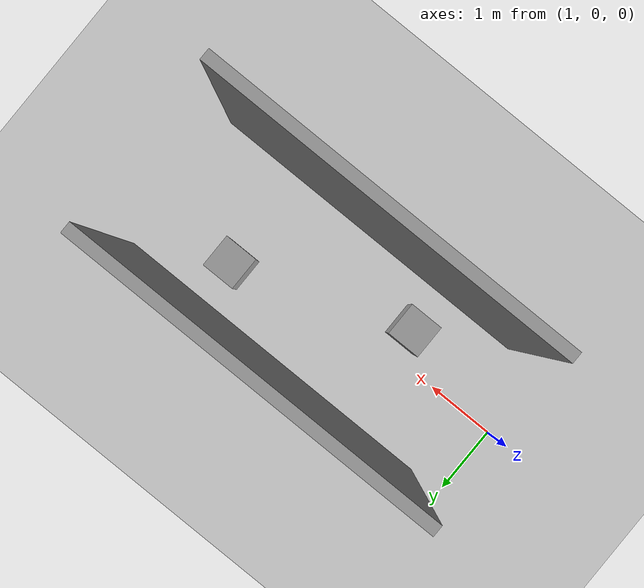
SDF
<sdf version="1.7">
 <world name="default">
  <light name="sun" type="directional">
   <pose>0 0 10 0 -0 0</pose>
   <diffuse>0.8 0.8 0.8 1</diffuse>
   <specular>0.2 0.2 0.2 1</specular>
   <attenuation>
    <range>1000</range>
    <constant>0.9</constant>
    <linear>0.01</linear>
    <quadratic>0.001</quadratic>
   </attenuation>
   <direction>-0.5 0.1 -0.9</direction>
   <spot><inner_angle>0</inner_angle><outer_angle>0</outer_angle><falloff>0</falloff></spot>
  </light>
  <model name="ground_plane">
   <static>1</static>
   <link name="link">
    <collision name="collision">
     <geometry><plane><normal>0 0 1</normal><size>100 100</size></plane></geometry>
     <surface><friction><ode><mu>100</mu><mu2>50</mu2></ode></friction></surface>
    </collision>
    <visual name="visual">
     <cast_shadows>0</cast_shadows>
     <geometry><plane><normal>0 0 1</normal><size>100 100</size></plane></geometry>
     <material>
      <script><uri>file://media/materials/scripts/gazebo.material</uri><name>Gazebo/Grey</name></script>
     </material>
    </visual>
   </link>
  </model>
  <gravity>0 0 -9.8</gravity>
  <magnetic_field>6e-06 2.3e-05 -4.2e-05</magnetic_field>
  <atmosphere type="adiabatic"/>
  <physics type="ode">
   <max_step_size>0.001</max_step_size>
   <real_time_factor>1</real_time_factor>
   <real_time_update_rate>1000</real_time_update_rate>
  </physics>
  <scene><ambient>0.4 0.4 0.4 1</ambient><background>0.7 0.7 0.7 1</background><shadows>1</shadows></scene>
  <audio><device>default</device></audio>
  <spherical_coordinates>
   <surface_model>EARTH_WGS84</surface_model>
   <latitude_deg>0</latitude_deg>
   <longitude_deg>0</longitude_deg>
   <elevation>0</elevation>
   <heading_deg>0</heading_deg>
  </spherical_coordinates>
  <model name="box_0.5">
   <link name="link_0">
    <inertial>
     <mass>1</mass>
     <inertia>
      <ixx>0.166667</ixx>
      <ixy>0</ixy>
      <ixz>0</ixz>
      <iyy>0.166667</iyy>
      <iyz>0</iyz>
      <izz>0.166667</izz>
     </inertia>
    </inertial>
    <visual name="visual">
     <geometry><box><size>0.5 0.5 0.5</size></box></geometry>
     <material>
      <lighting>1</lighting>
      <script><uri>file://media/materials/scripts/gazebo.material</uri><name>Gazebo/Grey</name></script>
      <shader type="pixel"><normal_map>__default__</normal_map></shader>
      <ambient>0.3 0.3 0.3 1</ambient>
      <diffuse>0.7 0.7 0.7 1</diffuse>
      <specular>0.01 0.01 0.01 1</specular>
      <emissive>0 0 0 1</emissive>
     </material>
    </visual>
    <collision name="collision">
     <geometry><box><size>0.5 0.5 0.5</size></box></geometry>
     <surface>
      <friction>
       <ode><mu>1</mu><mu2>1</mu2><fdir1>0 0 0</fdir1><slip1>0</slip1><slip2>0</slip2></ode>
       <torsional>
        <coefficient>1</coefficient>
        <patch_radius>0</patch_radius>
        <surface_radius>0</surface_radius>
        <use_patch_radius>1</use_patch_radius>
        <ode><slip>0</slip></ode>
       </torsional>
      </friction>
      <bounce><restitution_coefficient>0</restitution_coefficient><threshold>1e+06</threshold></bounce>
      <contact>
       <collide_without_contact>0</collide_without_contact>
       <collide_without_contact_bitmask>1</collide_without_contact_bitmask>
       <collide_bitmask>1</collide_bitmask>
       <ode>
        <soft_cfm>0</soft_cfm>
        <soft_erp>0.2</soft_erp>
        <kp>1e+13</kp>
        <kd>1</kd>
        <max_vel>0.01</max_vel>
        <min_depth>0</min_depth>
       </ode>
       <bullet>
        <split_impulse>1</split_impulse>
        <split_impulse_penetration_threshold>-0.01</split_impulse_penetration_threshold>
        <soft_cfm>0</soft_cfm>
        <soft_erp>0.2</soft_erp>
        <kp>1e+13</kp>
        <kd>1</kd>
       </bullet>
      </contact>
     </surface>
    </collision>
   </link>
   <static>0</static>
   <pose>2.7444 -0.43279 0.25 0 -0 0</pose>
  </model>
  <model name="box_0.5_clone">
   <link name="link_0">
    <inertial>
     <mass>1</mass>
     <inertia>
      <ixx>0.166667</ixx>
      <ixy>0</ixy>
      <ixz>0</ixz>
      <iyy>0.166667</iyy>
      <iyz>0</iyz>
      <izz>0.166667</izz>
     </inertia>
    </inertial>
    <visual name="visual">
     <geometry><box><size>0.5 0.5 0.5</size></box></geometry>
     <material>
      <lighting>1</lighting>
      <script><uri>file://media/materials/scripts/gazebo.material</uri><name>Gazebo/Grey</name></script>
      <shader type="pixel"><normal_map>__default__</normal_map></shader>
      <ambient>0.3 0.3 0.3 1</ambient>
      <diffuse>0.7 0.7 0.7 1</diffuse>
      <specular>0.01 0.01 0.01 1</specular>
      <emissive>0 0 0 1</emissive>
     </material>
    </visual>
    <collision name="collision">
     <geometry><box><size>0.5 0.5 0.5</size></box></geometry>
     <surface>
      <friction>
       <ode><mu>1</mu><mu2>1</mu2><fdir1>0 0 0</fdir1><slip1>0</slip1><slip2>0</slip2></ode>
       <torsional>
        <coefficient>1</coefficient>
        <patch_radius>0</patch_radius>
        <surface_radius>0</surface_radius>
        <use_patch_radius>1</use_patch_radius>
        <ode><slip>0</slip></ode>
       </torsional>
      </friction>
      <bounce><restitution_coefficient>0</restitution_coefficient><threshold>1e+06</threshold></bounce>
      <contact>
       <collide_without_contact>0</collide_without_contact>
       <collide_without_contact_bitmask>1</collide_without_contact_bitmask>
       <collide_bitmask>1</collide_bitmask>
       <ode>
        <soft_cfm>0</soft_cfm>
        <soft_erp>0.2</soft_erp>
        <kp>1e+13</kp>
        <kd>1</kd>
        <max_vel>0.01</max_vel>
        <min_depth>0</min_depth>
       </ode>
       <bullet>
        <split_impulse>1</split_impulse>
        <split_impulse_penetration_threshold>-0.01</split_impulse_penetration_threshold>
        <soft_cfm>0</soft_cfm>
        <soft_erp>0.2</soft_erp>
        <kp>1e+13</kp>
        <kd>1</kd>
       </bullet>
      </contact>
     </surface>
    </collision>
   </link>
   <static>0</static>
   <pose>5.22638 0.419799 0.25 0 -0 0</pose>
  </model>
  <model name="corridor3">
   <link name="Wall_11">
    <pose>0.40077 1.17647 0 0 -0 0</pose>
    <visual name="Wall_11_Visual">
     <pose>0 0 1.25 0 -0 0</pose>
     <geometry><box><size>5 0.15 2.5</size></box></geometry>
     <material>
      <script><uri>file://media/materials/scripts/gazebo.material</uri><name>Gazebo/Grey</name></script>
      <ambient>1 1 1 1</ambient>
      <shader type="pixel"/>
     </material>
     <meta><layer>0</layer></meta>
    </visual>
    <collision name="Wall_11_Collision">
     <pose>0 0 1.25 0 -0 0</pose>
     <geometry><box><size>5 0.15 2.5</size></box></geometry>
     <surface>
      <friction>
       <ode><mu>1</mu><mu2>1</mu2><fdir1>0 0 0</fdir1><slip1>0</slip1><slip2>0</slip2></ode>
       <torsional>
        <coefficient>1</coefficient>
        <patch_radius>0</patch_radius>
        <surface_radius>0</surface_radius>
        <use_patch_radius>1</use_patch_radius>
        <ode><slip>0</slip></ode>
       </torsional>
      </friction>
      <bounce><restitution_coefficient>0</restitution_coefficient><threshold>1e+06</threshold></bounce>
      <contact>
       <collide_without_contact>0</collide_without_contact>
       <collide_without_contact_bitmask>1</collide_without_contact_bitmask>
       <collide_bitmask>1</collide_bitmask>
       <ode>
        <soft_cfm>0</soft_cfm>
        <soft_erp>0.2</soft_erp>
        <kp>1e+13</kp>
        <kd>1</kd>
        <max_vel>0.01</max_vel>
        <min_depth>0</min_depth>
       </ode>
       <bullet>
        <split_impulse>1</split_impulse>
        <split_impulse_penetration_threshold>-0.01</split_impulse_penetration_threshold>
        <soft_cfm>0</soft_cfm>
        <soft_erp>0.2</soft_erp>
        <kp>1e+13</kp>
        <kd>1</kd>
       </bullet>
      </contact>
     </surface>
    </collision>
   </link>
   <link name="Wall_8">
    <pose>0.417223 -1.13314 0 0 -0 0</pose>
    <visual name="Wall_8_Visual">
     <pose>0 0 1.25 0 -0 0</pose>
     <geometry><box><size>5 0.15 2.5</size></box></geometry>
     <material>
      <script><uri>file://media/materials/scripts/gazebo.material</uri><name>Gazebo/Grey</name></script>
      <ambient>1 1 1 1</ambient>
      <shader type="pixel"/>
     </material>
     <meta><layer>0</layer></meta>
    </visual>
    <collision name="Wall_8_Collision">
     <pose>0 0 1.25 0 -0 0</pose>
     <geometry><box><size>5 0.15 2.5</size></box></geometry>
     <surface>
      <friction>
       <ode><mu>1</mu><mu2>1</mu2><fdir1>0 0 0</fdir1><slip1>0</slip1><slip2>0</slip2></ode>
       <torsional>
        <coefficient>1</coefficient>
        <patch_radius>0</patch_radius>
        <surface_radius>0</surface_radius>
        <use_patch_radius>1</use_patch_radius>
        <ode><slip>0</slip></ode>
       </torsional>
      </friction>
      <bounce><restitution_coefficient>0</restitution_coefficient><threshold>1e+06</threshold></bounce>
      <contact>
       <collide_without_contact>0</collide_without_contact>
       <collide_without_contact_bitmask>1</collide_without_contact_bitmask>
       <collide_bitmask>1</collide_bitmask>
       <ode>
        <soft_cfm>0</soft_cfm>
        <soft_erp>0.2</soft_erp>
        <kp>1e+13</kp>
        <kd>1</kd>
        <max_vel>0.01</max_vel>
        <min_depth>0</min_depth>
       </ode>
       <bullet>
        <split_impulse>1</split_impulse>
        <split_impulse_penetration_threshold>-0.01</split_impulse_penetration_threshold>
        <soft_cfm>0</soft_cfm>
        <soft_erp>0.2</soft_erp>
        <kp>1e+13</kp>
        <kd>1</kd>
       </bullet>
      </contact>
     </surface>
    </collision>
   </link>
   <static>1</static>
   <pose>3.59475 -0.02601 0 0 -0 0</pose>
  </model>
 </world>
</sdf>
